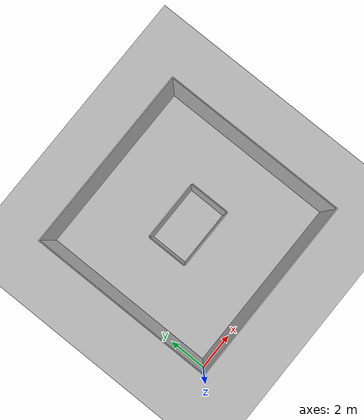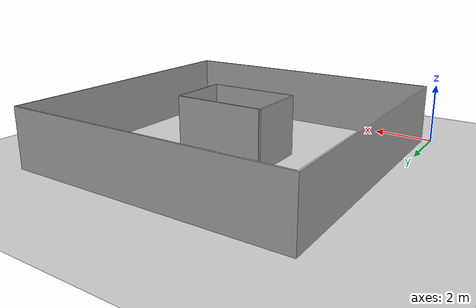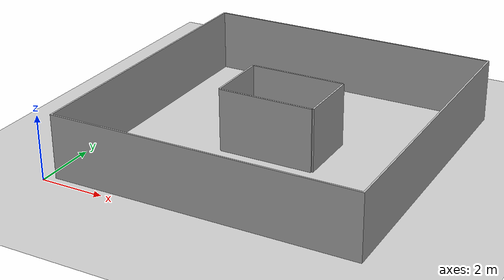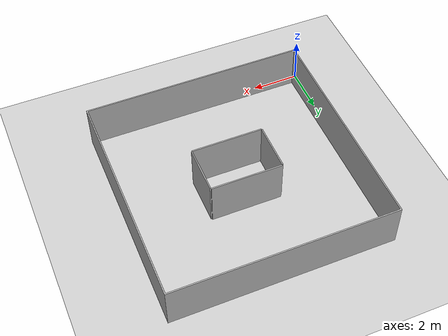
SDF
<?xml version="1.0" ?>
<sdf version="1.7">
  <world name="default">

    <light name="sun" type="directional">
      <pose>0 0 10 0 0 0</pose>
      <diffuse>0.8 0.8 0.8 1</diffuse>
      <specular>0.2 0.2 0.2 1</specular>
      <direction>-0.5 0.1 -0.9</direction>
    </light>

    <model name="ground_plane">
      <static>true</static>
      <link name="link">
        <collision name="collision">
          <geometry>
            <plane>
              <normal>0 0 1</normal>
              <size>100 100</size>
            </plane>
          </geometry>
        </collision>
        <visual name="visual">
          <geometry>
            <plane>
              <normal>0 0 1</normal>
              <size>100 100</size>
            </plane>
          </geometry>
        </visual>
      </link>
    </model>

    <include>
      <uri>model://map</uri>
      <pose>0 0 0 0 0 0</pose>
    </include>

  </world>
</sdf>

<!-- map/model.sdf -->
<sdf version="1.6">
  <model name="map">
    <static>true</static>

    <link name="link">

      <visual name="visual">
        <geometry>
          <mesh>
            <uri>model://map/meshes/simple_map.stl</uri>
          </mesh>
        </geometry>
      </visual>

      <collision name="collision">
        <geometry>
          <mesh>
            <uri>model://map/meshes/simple_map.stl</uri>
          </mesh>
        </geometry>
      </collision>

    </link>
  </model>
</sdf>
